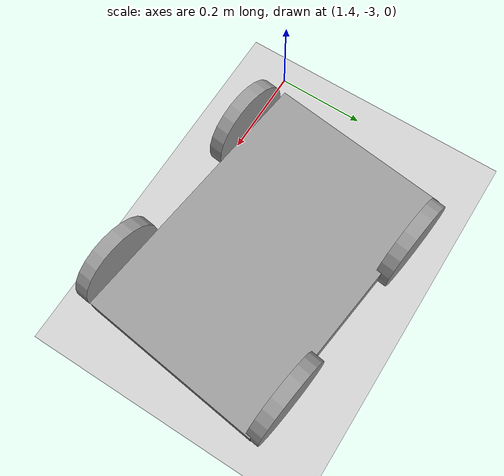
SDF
<sdf version="1.6">
 <world name="default">
  <model name="ground_plane">
   <static>1</static>
   <link name="link">
    <collision name="collision">
     <geometry><plane><normal>0 0 1</normal><size>100 100</size></plane></geometry>
     <surface>
      <contact><collide_bitmask>65535</collide_bitmask></contact>
      <friction><ode><mu>100</mu><mu2>50</mu2></ode></friction>
     </surface>
    </collision>
    <visual name="visual">
     <cast_shadows>0</cast_shadows>
     <geometry><plane><normal>0 0 1</normal><size>100 100</size></plane></geometry>
     <material>
      <script><uri>file://media/materials/scripts/gazebo.material</uri><name>Gazebo/Grey</name></script>
     </material>
    </visual>
   </link>
  </model>
  <model name="myRobot_clone">
   <link name="link_0">
    <inertial>
     <mass>1</mass>
     <inertia>
      <ixx>0.166667</ixx>
      <ixy>0</ixy>
      <ixz>0</ixz>
      <iyy>0.166667</iyy>
      <iyz>0</iyz>
      <izz>0.166667</izz>
     </inertia>
     <pose>0 0 0.1 0 -0 0</pose>
    </inertial>
    <pose>0 0.009302 0 0 -0 0</pose>
    <visual name="visual">
     <geometry><box><size>0.6 0.4 0.05</size></box></geometry>
     <material>
      <lighting>1</lighting>
      <script><uri>file://media/materials/scripts/gazebo.material</uri><name>Gazebo/Grey</name></script>
      <shader type="vertex"><normal_map>__default__</normal_map></shader>
      <ambient>0.3 0.3 0.3 1</ambient>
      <diffuse>0.7 0.7 0.7 1</diffuse>
      <specular>0.01 0.01 0.01 1</specular>
      <emissive>0 0 0 1</emissive>
     </material>
    </visual>
    <collision name="collision">
     <geometry><box><size>0.6 0.4 0.05</size></box></geometry>
     <surface>
      <friction>
       <ode><mu>1</mu><mu2>1</mu2><fdir1>0 0 0</fdir1><slip1>0</slip1><slip2>0</slip2></ode>
       <torsional>
        <coefficient>1</coefficient>
        <patch_radius>0</patch_radius>
        <surface_radius>0</surface_radius>
        <use_patch_radius>1</use_patch_radius>
        <ode><slip>0</slip></ode>
       </torsional>
      </friction>
      <bounce><restitution_coefficient>0</restitution_coefficient><threshold>1e+06</threshold></bounce>
      <contact>
       <collide_without_contact>0</collide_without_contact>
       <collide_without_contact_bitmask>1</collide_without_contact_bitmask>
       <collide_bitmask>1</collide_bitmask>
       <ode>
        <soft_cfm>0</soft_cfm>
        <soft_erp>0.2</soft_erp>
        <kp>1e+13</kp>
        <kd>1</kd>
        <max_vel>0.01</max_vel>
        <min_depth>0</min_depth>
       </ode>
       <bullet>
        <split_impulse>1</split_impulse>
        <split_impulse_penetration_threshold>-0.01</split_impulse_penetration_threshold>
        <soft_cfm>0</soft_cfm>
        <soft_erp>0.2</soft_erp>
        <kp>1e+13</kp>
        <kd>1</kd>
       </bullet>
      </contact>
     </surface>
    </collision>
   </link>
   <link name="link_1">
    <inertial>
     <mass>1</mass>
     <inertia><ixx>0.145833</ixx><ixy>0</ixy><ixz>0</ixz><iyy>0.145833</iyy><iyz>0</iyz><izz>0.125</izz></inertia>
    </inertial>
    <pose>-0.2 0.212674 0 1.5707 -0 0</pose>
    <visual name="visual">
     <geometry><cylinder><radius>0.1</radius><length>0.03</length></cylinder></geometry>
     <material>
      <lighting>1</lighting>
      <script><uri>file://media/materials/scripts/gazebo.material</uri><name>Gazebo/Grey</name></script>
      <shader type="vertex"><normal_map>__default__</normal_map></shader>
      <ambient>0.3 0.3 0.3 1</ambient>
      <diffuse>0.7 0.7 0.7 1</diffuse>
      <specular>0.01 0.01 0.01 1</specular>
      <emissive>0 0 0 1</emissive>
     </material>
    </visual>
    <collision name="collision">
     <geometry><cylinder><radius>0.1</radius><length>0.03</length></cylinder></geometry>
     <surface>
      <friction>
       <ode><mu>1</mu><mu2>1</mu2><fdir1>0 0 0</fdir1><slip1>0</slip1><slip2>0</slip2></ode>
       <torsional>
        <coefficient>1</coefficient>
        <patch_radius>0</patch_radius>
        <surface_radius>0</surface_radius>
        <use_patch_radius>1</use_patch_radius>
        <ode><slip>0</slip></ode>
       </torsional>
      </friction>
      <bounce><restitution_coefficient>0</restitution_coefficient><threshold>1e+06</threshold></bounce>
      <contact>
       <collide_without_contact>0</collide_without_contact>
       <collide_without_contact_bitmask>1</collide_without_contact_bitmask>
       <collide_bitmask>1</collide_bitmask>
       <ode>
        <soft_cfm>0</soft_cfm>
        <soft_erp>0.2</soft_erp>
        <kp>1e+13</kp>
        <kd>1</kd>
        <max_vel>0.01</max_vel>
        <min_depth>0</min_depth>
       </ode>
       <bullet>
        <split_impulse>1</split_impulse>
        <split_impulse_penetration_threshold>-0.01</split_impulse_penetration_threshold>
        <soft_cfm>0</soft_cfm>
        <soft_erp>0.2</soft_erp>
        <kp>1e+13</kp>
        <kd>1</kd>
       </bullet>
      </contact>
     </surface>
    </collision>
   </link>
   <link name="link_1_clone">
    <inertial>
     <mass>1</mass>
     <inertia><ixx>0.145833</ixx><ixy>0</ixy><ixz>0</ixz><iyy>0.145833</iyy><iyz>0</iyz><izz>0.125</izz></inertia>
    </inertial>
    <pose>-0.2 -0.217336 0 1.5707 -0 0</pose>
    <visual name="visual">
     <geometry><cylinder><radius>0.1</radius><length>0.03</length></cylinder></geometry>
     <material>
      <lighting>1</lighting>
      <script><uri>file://media/materials/scripts/gazebo.material</uri><name>Gazebo/Grey</name></script>
      <shader type="vertex"><normal_map>__default__</normal_map></shader>
      <ambient>0.3 0.3 0.3 1</ambient>
      <diffuse>0.7 0.7 0.7 1</diffuse>
      <specular>0.01 0.01 0.01 1</specular>
      <emissive>0 0 0 1</emissive>
     </material>
    </visual>
    <collision name="collision">
     <geometry><cylinder><radius>0.1</radius><length>0.03</length></cylinder></geometry>
     <surface>
      <friction>
       <ode><mu>1</mu><mu2>1</mu2><fdir1>0 0 0</fdir1><slip1>0</slip1><slip2>0</slip2></ode>
       <torsional>
        <coefficient>1</coefficient>
        <patch_radius>0</patch_radius>
        <surface_radius>0</surface_radius>
        <use_patch_radius>1</use_patch_radius>
        <ode><slip>0</slip></ode>
       </torsional>
      </friction>
      <bounce><restitution_coefficient>0</restitution_coefficient><threshold>1e+06</threshold></bounce>
      <contact>
       <collide_without_contact>0</collide_without_contact>
       <collide_without_contact_bitmask>1</collide_without_contact_bitmask>
       <collide_bitmask>1</collide_bitmask>
       <ode>
        <soft_cfm>0</soft_cfm>
        <soft_erp>0.2</soft_erp>
        <kp>1e+13</kp>
        <kd>1</kd>
        <max_vel>0.01</max_vel>
        <min_depth>0</min_depth>
       </ode>
       <bullet>
        <split_impulse>1</split_impulse>
        <split_impulse_penetration_threshold>-0.01</split_impulse_penetration_threshold>
        <soft_cfm>0</soft_cfm>
        <soft_erp>0.2</soft_erp>
        <kp>1e+13</kp>
        <kd>1</kd>
       </bullet>
      </contact>
     </surface>
    </collision>
   </link>
   <link name="link_1_clone_0">
    <inertial>
     <mass>1</mass>
     <inertia><ixx>0.145833</ixx><ixy>0</ixy><ixz>0</ixz><iyy>0.145833</iyy><iyz>0</iyz><izz>0.125</izz></inertia>
    </inertial>
    <pose>0.2 -0.217326 0 1.5707 -0 0</pose>
    <visual name="visual">
     <geometry><cylinder><radius>0.1</radius><length>0.03</length></cylinder></geometry>
     <material>
      <lighting>1</lighting>
      <script><uri>file://media/materials/scripts/gazebo.material</uri><name>Gazebo/Grey</name></script>
      <shader type="vertex"><normal_map>__default__</normal_map></shader>
      <ambient>0.3 0.3 0.3 1</ambient>
      <diffuse>0.7 0.7 0.7 1</diffuse>
      <specular>0.01 0.01 0.01 1</specular>
      <emissive>0 0 0 1</emissive>
     </material>
    </visual>
    <collision name="collision">
     <geometry><cylinder><radius>0.1</radius><length>0.03</length></cylinder></geometry>
     <surface>
      <friction>
       <ode><mu>1</mu><mu2>1</mu2><fdir1>0 0 0</fdir1><slip1>0</slip1><slip2>0</slip2></ode>
       <torsional>
        <coefficient>1</coefficient>
        <patch_radius>0</patch_radius>
        <surface_radius>0</surface_radius>
        <use_patch_radius>1</use_patch_radius>
        <ode><slip>0</slip></ode>
       </torsional>
      </friction>
      <bounce><restitution_coefficient>0</restitution_coefficient><threshold>1e+06</threshold></bounce>
      <contact>
       <collide_without_contact>0</collide_without_contact>
       <collide_without_contact_bitmask>1</collide_without_contact_bitmask>
       <collide_bitmask>1</collide_bitmask>
       <ode>
        <soft_cfm>0</soft_cfm>
        <soft_erp>0.2</soft_erp>
        <kp>1e+13</kp>
        <kd>1</kd>
        <max_vel>0.01</max_vel>
        <min_depth>0</min_depth>
       </ode>
       <bullet>
        <split_impulse>1</split_impulse>
        <split_impulse_penetration_threshold>-0.01</split_impulse_penetration_threshold>
        <soft_cfm>0</soft_cfm>
        <soft_erp>0.2</soft_erp>
        <kp>1e+13</kp>
        <kd>1</kd>
       </bullet>
      </contact>
     </surface>
    </collision>
   </link>
   <link name="link_1_clone_1">
    <inertial>
     <mass>1</mass>
     <inertia><ixx>0.145833</ixx><ixy>0</ixy><ixz>0</ixz><iyy>0.145833</iyy><iyz>0</iyz><izz>0.125</izz></inertia>
    </inertial>
    <pose>0.2 0.212684 0 1.5707 -0 0</pose>
    <visual name="visual">
     <geometry><cylinder><radius>0.1</radius><length>0.03</length></cylinder></geometry>
     <material>
      <lighting>1</lighting>
      <script><uri>file://media/materials/scripts/gazebo.material</uri><name>Gazebo/Grey</name></script>
      <shader type="vertex"><normal_map>__default__</normal_map></shader>
      <ambient>0.3 0.3 0.3 1</ambient>
      <diffuse>0.7 0.7 0.7 1</diffuse>
      <specular>0.01 0.01 0.01 1</specular>
      <emissive>0 0 0 1</emissive>
     </material>
    </visual>
    <collision name="collision">
     <geometry><cylinder><radius>0.1</radius><length>0.03</length></cylinder></geometry>
     <surface>
      <friction>
       <ode><mu>1</mu><mu2>1</mu2><fdir1>0 0 0</fdir1><slip1>0</slip1><slip2>0</slip2></ode>
       <torsional>
        <coefficient>1</coefficient>
        <patch_radius>0</patch_radius>
        <surface_radius>0</surface_radius>
        <use_patch_radius>1</use_patch_radius>
        <ode><slip>0</slip></ode>
       </torsional>
      </friction>
      <bounce><restitution_coefficient>0</restitution_coefficient><threshold>1e+06</threshold></bounce>
      <contact>
       <collide_without_contact>0</collide_without_contact>
       <collide_without_contact_bitmask>1</collide_without_contact_bitmask>
       <collide_bitmask>1</collide_bitmask>
       <ode>
        <soft_cfm>0</soft_cfm>
        <soft_erp>0.2</soft_erp>
        <kp>1e+13</kp>
        <kd>1</kd>
        <max_vel>0.01</max_vel>
        <min_depth>0</min_depth>
       </ode>
       <bullet>
        <split_impulse>1</split_impulse>
        <split_impulse_penetration_threshold>-0.01</split_impulse_penetration_threshold>
        <soft_cfm>0</soft_cfm>
        <soft_erp>0.2</soft_erp>
        <kp>1e+13</kp>
        <kd>1</kd>
       </bullet>
      </contact>
     </surface>
    </collision>
   </link>
   <joint name="link_0_JOINT_0" type="revolute">
    <parent>link_0</parent>
    <child>link_1_clone_0</child>
    <axis>
     <xyz>1 0 0</xyz>
     <use_parent_model_frame>0</use_parent_model_frame>
     <limit>
      <lower>-1.79769e+308</lower>
      <upper>1.79769e+308</upper>
      <effort>-1</effort>
      <velocity>-1</velocity>
     </limit>
     <dynamics>
      <spring_reference>0</spring_reference>
      <spring_stiffness>0</spring_stiffness>
      <damping>0</damping>
     </dynamics>
    </axis>
    <physics>
     <ode><limit><cfm>0</cfm><erp>0.2</erp></limit><suspension><cfm>0</cfm><erp>0.2</erp></suspension></ode>
    </physics>
   </joint>
   <joint name="link_0_JOINT_1" type="revolute">
    <parent>link_0</parent>
    <child>link_1_clone_1</child>
    <axis>
     <xyz>0 0 1</xyz>
     <use_parent_model_frame>0</use_parent_model_frame>
     <limit>
      <lower>-1.79769e+308</lower>
      <upper>1.79769e+308</upper>
      <effort>-1</effort>
      <velocity>-1</velocity>
     </limit>
     <dynamics>
      <spring_reference>0</spring_reference>
      <spring_stiffness>0</spring_stiffness>
      <damping>0</damping>
     </dynamics>
    </axis>
    <physics>
     <ode><limit><cfm>0</cfm><erp>0.2</erp></limit><suspension><cfm>0</cfm><erp>0.2</erp></suspension></ode>
    </physics>
   </joint>
   <joint name="link_0_JOINT_2" type="revolute">
    <parent>link_0</parent>
    <child>link_1_clone</child>
    <axis>
     <xyz>1 0 0</xyz>
     <use_parent_model_frame>0</use_parent_model_frame>
     <limit>
      <lower>-1.79769e+308</lower>
      <upper>1.79769e+308</upper>
      <effort>-1</effort>
      <velocity>-1</velocity>
     </limit>
     <dynamics>
      <spring_reference>0</spring_reference>
      <spring_stiffness>0</spring_stiffness>
      <damping>0</damping>
     </dynamics>
    </axis>
    <physics>
     <ode><limit><cfm>0</cfm><erp>0.2</erp></limit><suspension><cfm>0</cfm><erp>0.2</erp></suspension></ode>
    </physics>
   </joint>
   <joint name="link_0_JOINT_3" type="revolute">
    <parent>link_0</parent>
    <child>link_1</child>
    <axis>
     <xyz>1 0 0</xyz>
     <use_parent_model_frame>0</use_parent_model_frame>
     <limit>
      <lower>-1.79769e+308</lower>
      <upper>1.79769e+308</upper>
      <effort>-1</effort>
      <velocity>-1</velocity>
     </limit>
     <dynamics>
      <spring_reference>0</spring_reference>
      <spring_stiffness>0</spring_stiffness>
      <damping>0</damping>
     </dynamics>
    </axis>
    <physics>
     <ode><limit><cfm>0</cfm><erp>0.2</erp></limit><suspension><cfm>0</cfm><erp>0.2</erp></suspension></ode>
    </physics>
   </joint>
   <static>0</static>
   <pose>1.81262 -2.79195 0.1 1e-06 -8e-06 -0.120639</pose>
  </model>
 </world>
</sdf>
